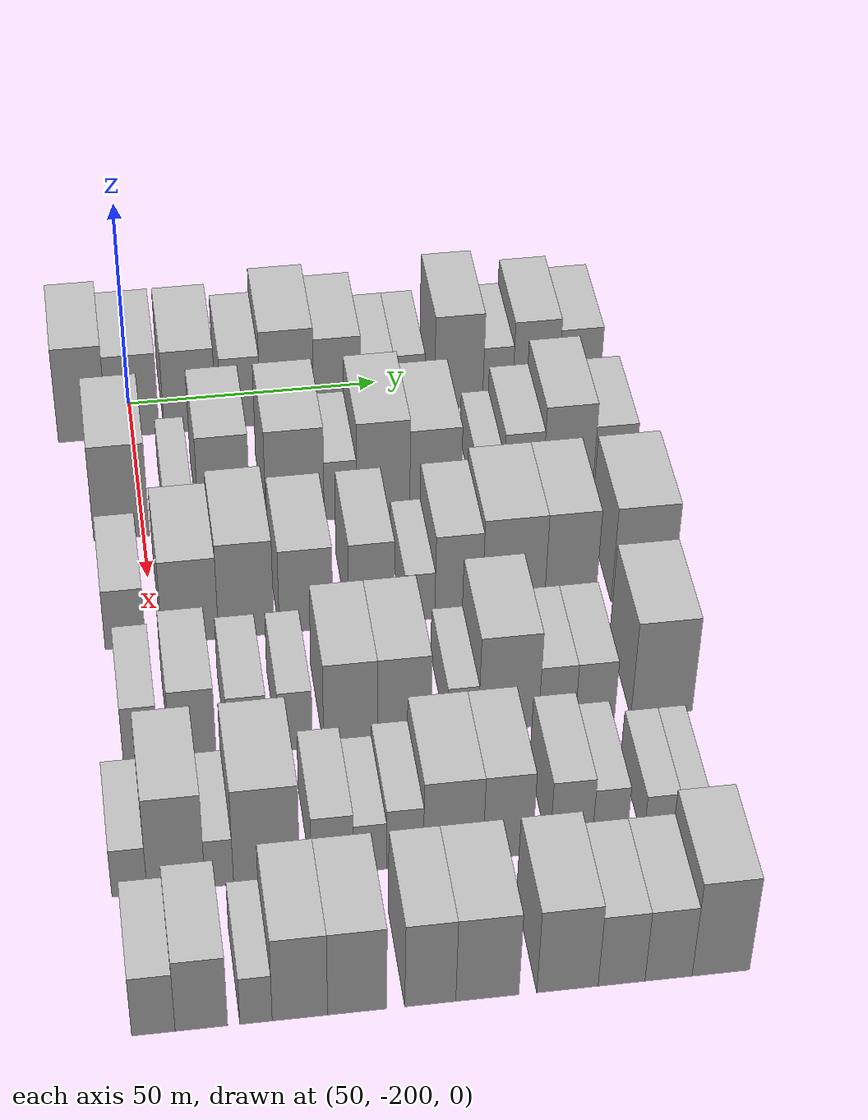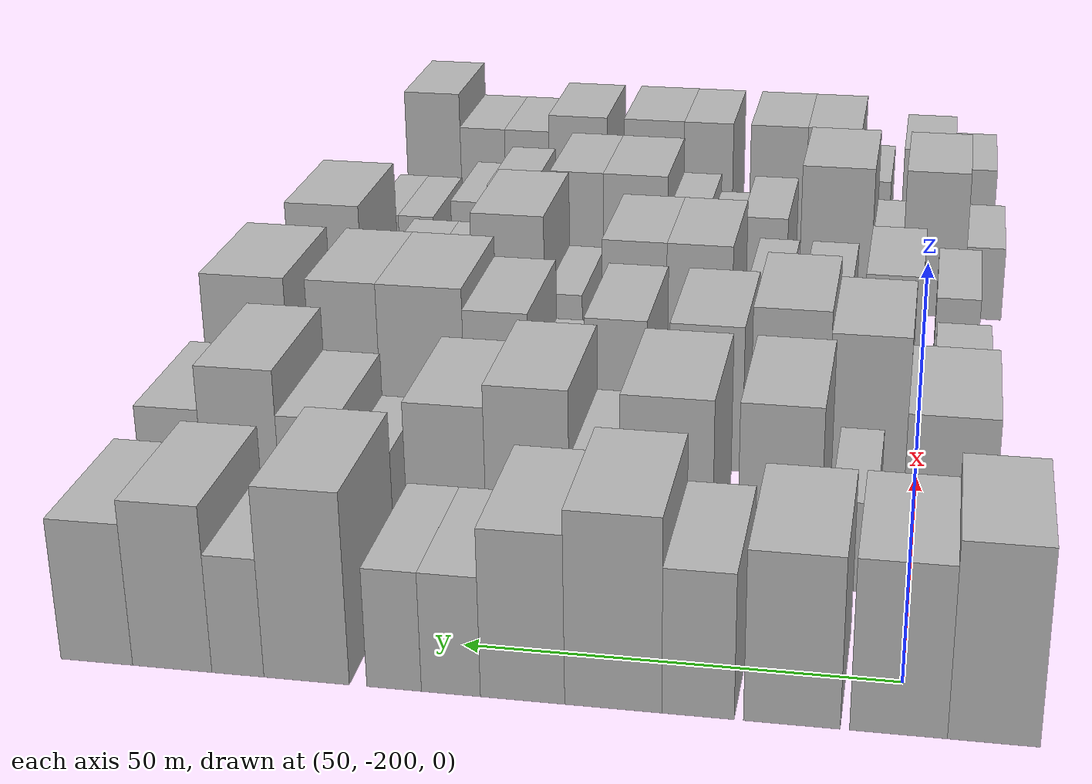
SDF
<sdf version="1.6">
 <world name="default">
  <model name="building_32">
   <static>1</static>
   <pose>50.0000 -209.8874 0 0.000000 0.000000 0.000000</pose>
   <link name="link">
    <pose>0 0 12.00 0 0 0</pose>
    <collision name="collision"><geometry><box><size>20.0000 9.7222 24.0000</size></box></geometry></collision>
    <visual name="visual">
     <cast_shadows>0</cast_shadows>
     <geometry><box><size>20.0000 9.7222 24.0000</size></box></geometry>
     <material>
      <script>
       <uri>model://HANNAS_wall/materials/scripts</uri>
       <uri>model://HANNAS_wall/materials/textures</uri>
       <name>vrc/HANNAS_wall</name>
      </script>
     </material>
    </visual>
   </link>
  </model>
  <model name="building_33">
   <static>1</static>
   <pose>50.0000 -199.8392 0 0.000000 0.000000 0.000000</pose>
   <link name="link">
    <pose>0 0 10.50 0 0 0</pose>
    <collision name="collision"><geometry><box><size>20.0000 10.3742 21.0000</size></box></geometry></collision>
    <visual name="visual">
     <cast_shadows>0</cast_shadows>
     <geometry><box><size>20.0000 10.3742 21.0000</size></box></geometry>
     <material>
      <script>
       <uri>model://HANNAS_wall/materials/scripts</uri>
       <uri>model://HANNAS_wall/materials/textures</uri>
       <name>vrc/HANNAS_wall</name>
      </script>
     </material>
    </visual>
   </link>
  </model>
  <model name="building_34">
   <static>1</static>
   <pose>50.0000 -188.4460 0 0.000000 0.000000 0.000000</pose>
   <link name="link">
    <pose>0 0 10.50 0 0 0</pose>
    <collision name="collision"><geometry><box><size>20.0000 10.4123 21.0000</size></box></geometry></collision>
    <visual name="visual">
     <cast_shadows>0</cast_shadows>
     <geometry><box><size>20.0000 10.4123 21.0000</size></box></geometry>
     <material>
      <script>
       <uri>model://HANNAS_wall/materials/scripts</uri>
       <uri>model://HANNAS_wall/materials/textures</uri>
       <name>vrc/HANNAS_wall</name>
      </script>
     </material>
    </visual>
   </link>
  </model>
  <model name="building_35">
   <static>1</static>
   <pose>50.0000 -178.2907 0 0.000000 0.000000 0.000000</pose>
   <link name="link">
    <pose>0 0 9.00 0 0 0</pose>
    <collision name="collision"><geometry><box><size>20.0000 7.8982 18.0000</size></box></geometry></collision>
    <visual name="visual">
     <cast_shadows>0</cast_shadows>
     <geometry><box><size>20.0000 7.8982 18.0000</size></box></geometry>
     <material>
      <script>
       <uri>model://HANNAS_wall/materials/scripts</uri>
       <uri>model://HANNAS_wall/materials/textures</uri>
       <name>vrc/HANNAS_wall</name>
      </script>
     </material>
    </visual>
   </link>
  </model>
  <model name="building_36">
   <static>1</static>
   <pose>50.0000 -168.9871 0 0.000000 0.000000 0.000000</pose>
   <link name="link">
    <pose>0 0 12.00 0 0 0</pose>
    <collision name="collision"><geometry><box><size>20.0000 10.7090 24.0000</size></box></geometry></collision>
    <visual name="visual">
     <cast_shadows>0</cast_shadows>
     <geometry><box><size>20.0000 10.7090 24.0000</size></box></geometry>
     <material>
      <script>
       <uri>model://HANNAS_wall/materials/scripts</uri>
       <uri>model://HANNAS_wall/materials/textures</uri>
       <name>vrc/HANNAS_wall</name>
      </script>
     </material>
    </visual>
   </link>
  </model>
  <model name="building_37">
   <static>1</static>
   <pose>50.0000 -158.9205 0 0.000000 0.000000 0.000000</pose>
   <link name="link">
    <pose>0 0 10.50 0 0 0</pose>
    <collision name="collision"><geometry><box><size>20.0000 9.4243 21.0000</size></box></geometry></collision>
    <visual name="visual">
     <cast_shadows>0</cast_shadows>
     <geometry><box><size>20.0000 9.4243 21.0000</size></box></geometry>
     <material>
      <script>
       <uri>model://HANNAS_wall/materials/scripts</uri>
       <uri>model://HANNAS_wall/materials/textures</uri>
       <name>vrc/HANNAS_wall</name>
      </script>
     </material>
    </visual>
   </link>
  </model>
  <model name="building_38">
   <static>1</static>
   <pose>50.0000 -150.8757 0 0.000000 0.000000 0.000000</pose>
   <link name="link">
    <pose>0 0 7.50 0 0 0</pose>
    <collision name="collision"><geometry><box><size>20.0000 6.6653 15.0000</size></box></geometry></collision>
    <visual name="visual">
     <cast_shadows>0</cast_shadows>
     <geometry><box><size>20.0000 6.6653 15.0000</size></box></geometry>
     <material>
      <script>
       <uri>model://HANNAS_wall/materials/scripts</uri>
       <uri>model://HANNAS_wall/materials/textures</uri>
       <name>vrc/HANNAS_wall</name>
      </script>
     </material>
    </visual>
   </link>
  </model>
  <model name="building_39">
   <static>1</static>
   <pose>50.0000 -144.4298 0 0.000000 0.000000 0.000000</pose>
   <link name="link">
    <pose>0 0 7.50 0 0 0</pose>
    <collision name="collision"><geometry><box><size>20.0000 6.2264 15.0000</size></box></geometry></collision>
    <visual name="visual">
     <cast_shadows>0</cast_shadows>
     <geometry><box><size>20.0000 6.2264 15.0000</size></box></geometry>
     <material>
      <script>
       <uri>model://HANNAS_wall/materials/scripts</uri>
       <uri>model://HANNAS_wall/materials/textures</uri>
       <name>vrc/HANNAS_wall</name>
      </script>
     </material>
    </visual>
   </link>
  </model>
  <model name="building_40">
   <static>1</static>
   <pose>50.0000 -134.3882 0 0.000000 0.000000 0.000000</pose>
   <link name="link">
    <pose>0 0 12.00 0 0 0</pose>
    <collision name="collision"><geometry><box><size>20.0000 9.8568 24.0000</size></box></geometry></collision>
    <visual name="visual">
     <cast_shadows>0</cast_shadows>
     <geometry><box><size>20.0000 9.8568 24.0000</size></box></geometry>
     <material>
      <script>
       <uri>model://HANNAS_wall/materials/scripts</uri>
       <uri>model://HANNAS_wall/materials/textures</uri>
       <name>vrc/HANNAS_wall</name>
      </script>
     </material>
    </visual>
   </link>
  </model>
  <model name="building_41">
   <static>1</static>
   <pose>50.0000 -126.4257 0 0.000000 0.000000 0.000000</pose>
   <link name="link">
    <pose>0 0 7.50 0 0 0</pose>
    <collision name="collision"><geometry><box><size>20.0000 6.0681 15.0000</size></box></geometry></collision>
    <visual name="visual">
     <cast_shadows>0</cast_shadows>
     <geometry><box><size>20.0000 6.0681 15.0000</size></box></geometry>
     <material>
      <script>
       <uri>model://HANNAS_wall/materials/scripts</uri>
       <uri>model://HANNAS_wall/materials/textures</uri>
       <name>vrc/HANNAS_wall</name>
      </script>
     </material>
    </visual>
   </link>
  </model>
  <model name="building_42">
   <static>1</static>
   <pose>50.0000 -118.7249 0 0.000000 0.000000 0.000000</pose>
   <link name="link">
    <pose>0 0 10.50 0 0 0</pose>
    <collision name="collision"><geometry><box><size>20.0000 9.3334 21.0000</size></box></geometry></collision>
    <visual name="visual">
     <cast_shadows>0</cast_shadows>
     <geometry><box><size>20.0000 9.3334 21.0000</size></box></geometry>
     <material>
      <script>
       <uri>model://HANNAS_wall/materials/scripts</uri>
       <uri>model://HANNAS_wall/materials/textures</uri>
       <name>vrc/HANNAS_wall</name>
      </script>
     </material>
    </visual>
   </link>
  </model>
  <model name="building_43">
   <static>1</static>
   <pose>50.0000 -109.7902 0 0.000000 0.000000 0.000000</pose>
   <link name="link">
    <pose>0 0 9.00 0 0 0</pose>
    <collision name="collision"><geometry><box><size>20.0000 8.5362 18.0000</size></box></geometry></collision>
    <visual name="visual">
     <cast_shadows>0</cast_shadows>
     <geometry><box><size>20.0000 8.5362 18.0000</size></box></geometry>
     <material>
      <script>
       <uri>model://HANNAS_wall/materials/scripts</uri>
       <uri>model://HANNAS_wall/materials/textures</uri>
       <name>vrc/HANNAS_wall</name>
      </script>
     </material>
    </visual>
   </link>
  </model>
  <model name="building_143">
   <static>1</static>
   <pose>79.0000 -204.1095 0 0.000000 0.000000 0.000000</pose>
   <link name="link">
    <pose>0 0 12.00 0 0 0</pose>
    <collision name="collision"><geometry><box><size>20.0000 10.7269 24.0000</size></box></geometry></collision>
    <visual name="visual">
     <cast_shadows>0</cast_shadows>
     <geometry><box><size>20.0000 10.7269 24.0000</size></box></geometry>
     <material>
      <script>
       <uri>model://HANNAS_wall/materials/scripts</uri>
       <uri>model://HANNAS_wall/materials/textures</uri>
       <name>vrc/HANNAS_wall</name>
      </script>
     </material>
    </visual>
   </link>
  </model>
  <model name="building_144">
   <static>1</static>
   <pose>79.0000 -192.9964 0 0.000000 0.000000 0.000000</pose>
   <link name="link">
    <pose>0 0 6.00 0 0 0</pose>
    <collision name="collision"><geometry><box><size>20.0000 5.4992 12.0000</size></box></geometry></collision>
    <visual name="visual">
     <cast_shadows>0</cast_shadows>
     <geometry><box><size>20.0000 5.4992 12.0000</size></box></geometry>
     <material>
      <script>
       <uri>model://HANNAS_wall/materials/scripts</uri>
       <uri>model://HANNAS_wall/materials/textures</uri>
       <name>vrc/HANNAS_wall</name>
      </script>
     </material>
    </visual>
   </link>
  </model>
  <model name="building_145">
   <static>1</static>
   <pose>79.0000 -184.2777 0 0.000000 0.000000 0.000000</pose>
   <link name="link">
    <pose>0 0 12.00 0 0 0</pose>
    <collision name="collision"><geometry><box><size>20.0000 9.9382 24.0000</size></box></geometry></collision>
    <visual name="visual">
     <cast_shadows>0</cast_shadows>
     <geometry><box><size>20.0000 9.9382 24.0000</size></box></geometry>
     <material>
      <script>
       <uri>model://HANNAS_wall/materials/scripts</uri>
       <uri>model://HANNAS_wall/materials/textures</uri>
       <name>vrc/HANNAS_wall</name>
      </script>
     </material>
    </visual>
   </link>
  </model>
  <model name="building_146">
   <static>1</static>
   <pose>79.0000 -170.6730 0 0.000000 0.000000 0.000000</pose>
   <link name="link">
    <pose>0 0 12.00 0 0 0</pose>
    <collision name="collision"><geometry><box><size>20.0000 11.2712 24.0000</size></box></geometry></collision>
    <visual name="visual">
     <cast_shadows>0</cast_shadows>
     <geometry><box><size>20.0000 11.2712 24.0000</size></box></geometry>
     <material>
      <script>
       <uri>model://HANNAS_wall/materials/scripts</uri>
       <uri>model://HANNAS_wall/materials/textures</uri>
       <name>vrc/HANNAS_wall</name>
      </script>
     </material>
    </visual>
   </link>
  </model>
  <model name="building_147">
   <static>1</static>
   <pose>79.0000 -161.9149 0 0.000000 0.000000 0.000000</pose>
   <link name="link">
    <pose>0 0 7.50 0 0 0</pose>
    <collision name="collision"><geometry><box><size>20.0000 6.2450 15.0000</size></box></geometry></collision>
    <visual name="visual">
     <cast_shadows>0</cast_shadows>
     <geometry><box><size>20.0000 6.2450 15.0000</size></box></geometry>
     <material>
      <script>
       <uri>model://HANNAS_wall/materials/scripts</uri>
       <uri>model://HANNAS_wall/materials/textures</uri>
       <name>vrc/HANNAS_wall</name>
      </script>
     </material>
    </visual>
   </link>
  </model>
  <model name="building_148">
   <static>1</static>
   <pose>79.0000 -153.6004 0 0.000000 0.000000 0.000000</pose>
   <link name="link">
    <pose>0 0 12.00 0 0 0</pose>
    <collision name="collision"><geometry><box><size>20.0000 10.3841 24.0000</size></box></geometry></collision>
    <visual name="visual">
     <cast_shadows>0</cast_shadows>
     <geometry><box><size>20.0000 10.3841 24.0000</size></box></geometry>
     <material>
      <script>
       <uri>model://HANNAS_wall/materials/scripts</uri>
       <uri>model://HANNAS_wall/materials/textures</uri>
       <name>vrc/HANNAS_wall</name>
      </script>
     </material>
    </visual>
   </link>
  </model>
  <model name="building_149">
   <static>1</static>
   <pose>79.0000 -143.4248 0 0.000000 0.000000 0.000000</pose>
   <link name="link">
    <pose>0 0 10.50 0 0 0</pose>
    <collision name="collision"><geometry><box><size>20.0000 9.9672 21.0000</size></box></geometry></collision>
    <visual name="visual">
     <cast_shadows>0</cast_shadows>
     <geometry><box><size>20.0000 9.9672 21.0000</size></box></geometry>
     <material>
      <script>
       <uri>model://HANNAS_wall/materials/scripts</uri>
       <uri>model://HANNAS_wall/materials/textures</uri>
       <name>vrc/HANNAS_wall</name>
      </script>
     </material>
    </visual>
   </link>
  </model>
  <model name="building_150">
   <static>1</static>
   <pose>79.0000 -132.7456 0 0.000000 0.000000 0.000000</pose>
   <link name="link">
    <pose>0 0 6.00 0 0 0</pose>
    <collision name="collision"><geometry><box><size>20.0000 5.3911 12.0000</size></box></geometry></collision>
    <visual name="visual">
     <cast_shadows>0</cast_shadows>
     <geometry><box><size>20.0000 5.3911 12.0000</size></box></geometry>
     <material>
      <script>
       <uri>model://HANNAS_wall/materials/scripts</uri>
       <uri>model://HANNAS_wall/materials/textures</uri>
       <name>vrc/HANNAS_wall</name>
      </script>
     </material>
    </visual>
   </link>
  </model>
  <model name="building_151">
   <static>1</static>
   <pose>79.0000 -126.2244 0 0.000000 0.000000 0.000000</pose>
   <link name="link">
    <pose>0 0 9.00 0 0 0</pose>
    <collision name="collision"><geometry><box><size>20.0000 7.6513 18.0000</size></box></geometry></collision>
    <visual name="visual">
     <cast_shadows>0</cast_shadows>
     <geometry><box><size>20.0000 7.6513 18.0000</size></box></geometry>
     <material>
      <script>
       <uri>model://HANNAS_wall/materials/scripts</uri>
       <uri>model://HANNAS_wall/materials/textures</uri>
       <name>vrc/HANNAS_wall</name>
      </script>
     </material>
    </visual>
   </link>
  </model>
  <model name="building_152">
   <static>1</static>
   <pose>79.0000 -117.4404 0 0.000000 0.000000 0.000000</pose>
   <link name="link">
    <pose>0 0 12.00 0 0 0</pose>
    <collision name="collision"><geometry><box><size>20.0000 9.9169 24.0000</size></box></geometry></collision>
    <visual name="visual">
     <cast_shadows>0</cast_shadows>
     <geometry><box><size>20.0000 9.9169 24.0000</size></box></geometry>
     <material>
      <script>
       <uri>model://HANNAS_wall/materials/scripts</uri>
       <uri>model://HANNAS_wall/materials/textures</uri>
       <name>vrc/HANNAS_wall</name>
      </script>
     </material>
    </visual>
   </link>
  </model>
  <model name="building_153">
   <static>1</static>
   <pose>79.0000 -108.3870 0 0.000000 0.000000 0.000000</pose>
   <link name="link">
    <pose>0 0 9.00 0 0 0</pose>
    <collision name="collision"><geometry><box><size>20.0000 8.1900 18.0000</size></box></geometry></collision>
    <visual name="visual">
     <cast_shadows>0</cast_shadows>
     <geometry><box><size>20.0000 8.1900 18.0000</size></box></geometry>
     <material>
      <script>
       <uri>model://HANNAS_wall/materials/scripts</uri>
       <uri>model://HANNAS_wall/materials/textures</uri>
       <name>vrc/HANNAS_wall</name>
      </script>
     </material>
    </visual>
   </link>
  </model>
  <model name="building_254">
   <static>1</static>
   <pose>108.0000 -205.3923 0 0.000000 0.000000 0.000000</pose>
   <link name="link">
    <pose>0 0 7.50 0 0 0</pose>
    <collision name="collision"><geometry><box><size>20.0000 7.4865 15.0000</size></box></geometry></collision>
    <visual name="visual">
     <cast_shadows>0</cast_shadows>
     <geometry><box><size>20.0000 7.4865 15.0000</size></box></geometry>
     <material>
      <script>
       <uri>model://HANNAS_wall/materials/scripts</uri>
       <uri>model://HANNAS_wall/materials/textures</uri>
       <name>vrc/HANNAS_wall</name>
      </script>
     </material>
    </visual>
   </link>
  </model>
  <model name="building_255">
   <static>1</static>
   <pose>108.0000 -193.4104 0 0.000000 0.000000 0.000000</pose>
   <link name="link">
    <pose>0 0 10.50 0 0 0</pose>
    <collision name="collision"><geometry><box><size>20.0000 10.4773 21.0000</size></box></geometry></collision>
    <visual name="visual">
     <cast_shadows>0</cast_shadows>
     <geometry><box><size>20.0000 10.4773 21.0000</size></box></geometry>
     <material>
      <script>
       <uri>model://HANNAS_wall/materials/scripts</uri>
       <uri>model://HANNAS_wall/materials/textures</uri>
       <name>vrc/HANNAS_wall</name>
      </script>
     </material>
    </visual>
   </link>
  </model>
  <model name="building_256">
   <static>1</static>
   <pose>108.0000 -183.0156 0 0.000000 0.000000 0.000000</pose>
   <link name="link">
    <pose>0 0 12.00 0 0 0</pose>
    <collision name="collision"><geometry><box><size>20.0000 10.3125 24.0000</size></box></geometry></collision>
    <visual name="visual">
     <cast_shadows>0</cast_shadows>
     <geometry><box><size>20.0000 10.3125 24.0000</size></box></geometry>
     <material>
      <script>
       <uri>model://HANNAS_wall/materials/scripts</uri>
       <uri>model://HANNAS_wall/materials/textures</uri>
       <name>vrc/HANNAS_wall</name>
      </script>
     </material>
    </visual>
   </link>
  </model>
  <model name="building_257">
   <static>1</static>
   <pose>108.0000 -171.8912 0 0.000000 0.000000 0.000000</pose>
   <link name="link">
    <pose>0 0 10.50 0 0 0</pose>
    <collision name="collision"><geometry><box><size>20.0000 9.9362 21.0000</size></box></geometry></collision>
    <visual name="visual">
     <cast_shadows>0</cast_shadows>
     <geometry><box><size>20.0000 9.9362 21.0000</size></box></geometry>
     <material>
      <script>
       <uri>model://HANNAS_wall/materials/scripts</uri>
       <uri>model://HANNAS_wall/materials/textures</uri>
       <name>vrc/HANNAS_wall</name>
      </script>
     </material>
    </visual>
   </link>
  </model>
  <model name="building_258">
   <static>1</static>
   <pose>108.0000 -159.6842 0 0.000000 0.000000 0.000000</pose>
   <link name="link">
    <pose>0 0 10.50 0 0 0</pose>
    <collision name="collision"><geometry><box><size>20.0000 8.4778 21.0000</size></box></geometry></collision>
    <visual name="visual">
     <cast_shadows>0</cast_shadows>
     <geometry><box><size>20.0000 8.4778 21.0000</size></box></geometry>
     <material>
      <script>
       <uri>model://HANNAS_wall/materials/scripts</uri>
       <uri>model://HANNAS_wall/materials/textures</uri>
       <name>vrc/HANNAS_wall</name>
      </script>
     </material>
    </visual>
   </link>
  </model>
  <model name="building_259">
   <static>1</static>
   <pose>108.0000 -150.6266 0 0.000000 0.000000 0.000000</pose>
   <link name="link">
    <pose>0 0 6.00 0 0 0</pose>
    <collision name="collision"><geometry><box><size>20.0000 5.6375 12.0000</size></box></geometry></collision>
    <visual name="visual">
     <cast_shadows>0</cast_shadows>
     <geometry><box><size>20.0000 5.6375 12.0000</size></box></geometry>
     <material>
      <script>
       <uri>model://HANNAS_wall/materials/scripts</uri>
       <uri>model://HANNAS_wall/materials/textures</uri>
       <name>vrc/HANNAS_wall</name>
      </script>
     </material>
    </visual>
   </link>
  </model>
  <model name="building_260">
   <static>1</static>
   <pose>108.0000 -143.3648 0 0.000000 0.000000 0.000000</pose>
   <link name="link">
    <pose>0 0 10.50 0 0 0</pose>
    <collision name="collision"><geometry><box><size>20.0000 8.8861 21.0000</size></box></geometry></collision>
    <visual name="visual">
     <cast_shadows>0</cast_shadows>
     <geometry><box><size>20.0000 8.8861 21.0000</size></box></geometry>
     <material>
      <script>
       <uri>model://HANNAS_wall/materials/scripts</uri>
       <uri>model://HANNAS_wall/materials/textures</uri>
       <name>vrc/HANNAS_wall</name>
      </script>
     </material>
    </visual>
   </link>
  </model>
  <model name="building_261">
   <static>1</static>
   <pose>108.0000 -133.0179 0 0.000000 0.000000 0.000000</pose>
   <link name="link">
    <pose>0 0 12.00 0 0 0</pose>
    <collision name="collision"><geometry><box><size>20.0000 11.8077 24.0000</size></box></geometry></collision>
    <visual name="visual">
     <cast_shadows>0</cast_shadows>
     <geometry><box><size>20.0000 11.8077 24.0000</size></box></geometry>
     <material>
      <script>
       <uri>model://HANNAS_wall/materials/scripts</uri>
       <uri>model://HANNAS_wall/materials/textures</uri>
       <name>vrc/HANNAS_wall</name>
      </script>
     </material>
    </visual>
   </link>
  </model>
  <model name="building_262">
   <static>1</static>
   <pose>108.0000 -122.2464 0 0.000000 0.000000 0.000000</pose>
   <link name="link">
    <pose>0 0 12.00 0 0 0</pose>
    <collision name="collision"><geometry><box><size>20.0000 9.7353 24.0000</size></box></geometry></collision>
    <visual name="visual">
     <cast_shadows>0</cast_shadows>
     <geometry><box><size>20.0000 9.7353 24.0000</size></box></geometry>
     <material>
      <script>
       <uri>model://HANNAS_wall/materials/scripts</uri>
       <uri>model://HANNAS_wall/materials/textures</uri>
       <name>vrc/HANNAS_wall</name>
      </script>
     </material>
    </visual>
   </link>
  </model>
  <model name="building_263">
   <static>1</static>
   <pose>108.0000 -108.4960 0 0.000000 0.000000 0.000000</pose>
   <link name="link">
    <pose>0 0 12.00 0 0 0</pose>
    <collision name="collision"><geometry><box><size>20.0000 11.7654 24.0000</size></box></geometry></collision>
    <visual name="visual">
     <cast_shadows>0</cast_shadows>
     <geometry><box><size>20.0000 11.7654 24.0000</size></box></geometry>
     <material>
      <script>
       <uri>model://HANNAS_wall/materials/scripts</uri>
       <uri>model://HANNAS_wall/materials/textures</uri>
       <name>vrc/HANNAS_wall</name>
      </script>
     </material>
    </visual>
   </link>
  </model>
  <model name="building_363">
   <static>1</static>
   <pose>137.0000 -204.5634 0 0.000000 0.000000 0.000000</pose>
   <link name="link">
    <pose>0 0 7.50 0 0 0</pose>
    <collision name="collision"><geometry><box><size>20.0000 6.2729 15.0000</size></box></geometry></collision>
    <visual name="visual">
     <cast_shadows>0</cast_shadows>
     <geometry><box><size>20.0000 6.2729 15.0000</size></box></geometry>
     <material>
      <script>
       <uri>model://HANNAS_wall/materials/scripts</uri>
       <uri>model://HANNAS_wall/materials/textures</uri>
       <name>vrc/HANNAS_wall</name>
      </script>
     </material>
    </visual>
   </link>
  </model>
  <model name="building_364">
   <static>1</static>
   <pose>137.0000 -195.3425 0 0.000000 0.000000 0.000000</pose>
   <link name="link">
    <pose>0 0 9.00 0 0 0</pose>
    <collision name="collision"><geometry><box><size>20.0000 8.1687 18.0000</size></box></geometry></collision>
    <visual name="visual">
     <cast_shadows>0</cast_shadows>
     <geometry><box><size>20.0000 8.1687 18.0000</size></box></geometry>
     <material>
      <script>
       <uri>model://HANNAS_wall/materials/scripts</uri>
       <uri>model://HANNAS_wall/materials/textures</uri>
       <name>vrc/HANNAS_wall</name>
      </script>
     </material>
    </visual>
   </link>
  </model>
  <model name="building_365">
   <static>1</static>
   <pose>137.0000 -185.7282 0 0.000000 0.000000 0.000000</pose>
   <link name="link">
    <pose>0 0 7.50 0 0 0</pose>
    <collision name="collision"><geometry><box><size>20.0000 7.0600 15.0000</size></box></geometry></collision>
    <visual name="visual">
     <cast_shadows>0</cast_shadows>
     <geometry><box><size>20.0000 7.0600 15.0000</size></box></geometry>
     <material>
      <script>
       <uri>model://HANNAS_wall/materials/scripts</uri>
       <uri>model://HANNAS_wall/materials/textures</uri>
       <name>vrc/HANNAS_wall</name>
      </script>
     </material>
    </visual>
   </link>
  </model>
  <model name="building_366">
   <static>1</static>
   <pose>137.0000 -177.1450 0 0.000000 0.000000 0.000000</pose>
   <link name="link">
    <pose>0 0 7.50 0 0 0</pose>
    <collision name="collision"><geometry><box><size>20.0000 6.1064 15.0000</size></box></geometry></collision>
    <visual name="visual">
     <cast_shadows>0</cast_shadows>
     <geometry><box><size>20.0000 6.1064 15.0000</size></box></geometry>
     <material>
      <script>
       <uri>model://HANNAS_wall/materials/scripts</uri>
       <uri>model://HANNAS_wall/materials/textures</uri>
       <name>vrc/HANNAS_wall</name>
      </script>
     </material>
    </visual>
   </link>
  </model>
  <model name="building_367">
   <static>1</static>
   <pose>137.0000 -167.2583 0 0.000000 0.000000 0.000000</pose>
   <link name="link">
    <pose>0 0 10.50 0 0 0</pose>
    <collision name="collision"><geometry><box><size>20.0000 9.6670 21.0000</size></box></geometry></collision>
    <visual name="visual">
     <cast_shadows>0</cast_shadows>
     <geometry><box><size>20.0000 9.6670 21.0000</size></box></geometry>
     <material>
      <script>
       <uri>model://HANNAS_wall/materials/scripts</uri>
       <uri>model://HANNAS_wall/materials/textures</uri>
       <name>vrc/HANNAS_wall</name>
      </script>
     </material>
    </visual>
   </link>
  </model>
  <model name="building_368">
   <static>1</static>
   <pose>137.0000 -157.6413 0 0.000000 0.000000 0.000000</pose>
   <link name="link">
    <pose>0 0 10.50 0 0 0</pose>
    <collision name="collision"><geometry><box><size>20.0000 9.5670 21.0000</size></box></geometry></collision>
    <visual name="visual">
     <cast_shadows>0</cast_shadows>
     <geometry><box><size>20.0000 9.5670 21.0000</size></box></geometry>
     <material>
      <script>
       <uri>model://HANNAS_wall/materials/scripts</uri>
       <uri>model://HANNAS_wall/materials/textures</uri>
       <name>vrc/HANNAS_wall</name>
      </script>
     </material>
    </visual>
   </link>
  </model>
  <model name="building_369">
   <static>1</static>
   <pose>137.0000 -147.0509 0 0.000000 0.000000 0.000000</pose>
   <link name="link">
    <pose>0 0 6.00 0 0 0</pose>
    <collision name="collision"><geometry><box><size>20.0000 5.6139 12.0000</size></box></geometry></collision>
    <visual name="visual">
     <cast_shadows>0</cast_shadows>
     <geometry><box><size>20.0000 5.6139 12.0000</size></box></geometry>
     <material>
      <script>
       <uri>model://HANNAS_wall/materials/scripts</uri>
       <uri>model://HANNAS_wall/materials/textures</uri>
       <name>vrc/HANNAS_wall</name>
      </script>
     </material>
    </visual>
   </link>
  </model>
  <model name="building_370">
   <static>1</static>
   <pose>137.0000 -138.7744 0 0.000000 0.000000 0.000000</pose>
   <link name="link">
    <pose>0 0 12.00 0 0 0</pose>
    <collision name="collision"><geometry><box><size>20.0000 10.9391 24.0000</size></box></geometry></collision>
    <visual name="visual">
     <cast_shadows>0</cast_shadows>
     <geometry><box><size>20.0000 10.9391 24.0000</size></box></geometry>
     <material>
      <script>
       <uri>model://HANNAS_wall/materials/scripts</uri>
       <uri>model://HANNAS_wall/materials/textures</uri>
       <name>vrc/HANNAS_wall</name>
      </script>
     </material>
    </visual>
   </link>
  </model>
  <model name="building_371">
   <static>1</static>
   <pose>137.0000 -129.9476 0 0.000000 0.000000 0.000000</pose>
   <link name="link">
    <pose>0 0 7.50 0 0 0</pose>
    <collision name="collision"><geometry><box><size>20.0000 6.7143 15.0000</size></box></geometry></collision>
    <visual name="visual">
     <cast_shadows>0</cast_shadows>
     <geometry><box><size>20.0000 6.7143 15.0000</size></box></geometry>
     <material>
      <script>
       <uri>model://HANNAS_wall/materials/scripts</uri>
       <uri>model://HANNAS_wall/materials/textures</uri>
       <name>vrc/HANNAS_wall</name>
      </script>
     </material>
    </visual>
   </link>
  </model>
  <model name="building_372">
   <static>1</static>
   <pose>137.0000 -123.0063 0 0.000000 0.000000 0.000000</pose>
   <link name="link">
    <pose>0 0 7.50 0 0 0</pose>
    <collision name="collision"><geometry><box><size>20.0000 7.1683 15.0000</size></box></geometry></collision>
    <visual name="visual">
     <cast_shadows>0</cast_shadows>
     <geometry><box><size>20.0000 7.1683 15.0000</size></box></geometry>
     <material>
      <script>
       <uri>model://HANNAS_wall/materials/scripts</uri>
       <uri>model://HANNAS_wall/materials/textures</uri>
       <name>vrc/HANNAS_wall</name>
      </script>
     </material>
    </visual>
   </link>
  </model>
  <model name="building_373">
   <static>1</static>
   <pose>137.0000 -110.8007 0 0.000000 0.000000 0.000000</pose>
   <link name="link">
    <pose>0 0 12.00 0 0 0</pose>
    <collision name="collision"><geometry><box><size>20.0000 11.2429 24.0000</size></box></geometry></collision>
    <visual name="visual">
     <cast_shadows>0</cast_shadows>
     <geometry><box><size>20.0000 11.2429 24.0000</size></box></geometry>
     <material>
      <script>
       <uri>model://HANNAS_wall/materials/scripts</uri>
       <uri>model://HANNAS_wall/materials/textures</uri>
       <name>vrc/HANNAS_wall</name>
      </script>
     </material>
    </visual>
   </link>
  </model>
  <model name="building_481">
   <static>1</static>
   <pose>166.0000 -208.6887 0 0.000000 0.000000 0.000000</pose>
   <link name="link">
    <pose>0 0 6.00 0 0 0</pose>
    <collision name="collision"><geometry><box><size>20.0000 5.9915 12.0000</size></box></geometry></collision>
    <visual name="visual">
     <cast_shadows>0</cast_shadows>
     <geometry><box><size>20.0000 5.9915 12.0000</size></box></geometry>
     <material>
      <script>
       <uri>model://HANNAS_wall/materials/scripts</uri>
       <uri>model://HANNAS_wall/materials/textures</uri>
       <name>vrc/HANNAS_wall</name>
      </script>
     </material>
    </visual>
   </link>
  </model>
  <model name="building_482">
   <static>1</static>
   <pose>166.0000 -200.7702 0 0.000000 0.000000 0.000000</pose>
   <link name="link">
    <pose>0 0 12.00 0 0 0</pose>
    <collision name="collision"><geometry><box><size>20.0000 9.8454 24.0000</size></box></geometry></collision>
    <visual name="visual">
     <cast_shadows>0</cast_shadows>
     <geometry><box><size>20.0000 9.8454 24.0000</size></box></geometry>
     <material>
      <script>
       <uri>model://HANNAS_wall/materials/scripts</uri>
       <uri>model://HANNAS_wall/materials/textures</uri>
       <name>vrc/HANNAS_wall</name>
      </script>
     </material>
    </visual>
   </link>
  </model>
  <model name="building_483">
   <static>1</static>
   <pose>166.0000 -193.4150 0 0.000000 0.000000 0.000000</pose>
   <link name="link">
    <pose>0 0 6.00 0 0 0</pose>
    <collision name="collision"><geometry><box><size>20.0000 4.8649 12.0000</size></box></geometry></collision>
    <visual name="visual">
     <cast_shadows>0</cast_shadows>
     <geometry><box><size>20.0000 4.8649 12.0000</size></box></geometry>
     <material>
      <script>
       <uri>model://HANNAS_wall/materials/scripts</uri>
       <uri>model://HANNAS_wall/materials/textures</uri>
       <name>vrc/HANNAS_wall</name>
      </script>
     </material>
    </visual>
   </link>
  </model>
  <model name="building_484">
   <static>1</static>
   <pose>166.0000 -185.3224 0 0.000000 0.000000 0.000000</pose>
   <link name="link">
    <pose>0 0 12.00 0 0 0</pose>
    <collision name="collision"><geometry><box><size>20.0000 11.3204 24.0000</size></box></geometry></collision>
    <visual name="visual">
     <cast_shadows>0</cast_shadows>
     <geometry><box><size>20.0000 11.3204 24.0000</size></box></geometry>
     <material>
      <script>
       <uri>model://HANNAS_wall/materials/scripts</uri>
       <uri>model://HANNAS_wall/materials/textures</uri>
       <name>vrc/HANNAS_wall</name>
      </script>
     </material>
    </visual>
   </link>
  </model>
  <model name="building_485">
   <static>1</static>
   <pose>166.0000 -174.0446 0 0.000000 0.000000 0.000000</pose>
   <link name="link">
    <pose>0 0 7.50 0 0 0</pose>
    <collision name="collision"><geometry><box><size>20.0000 7.2351 15.0000</size></box></geometry></collision>
    <visual name="visual">
     <cast_shadows>0</cast_shadows>
     <geometry><box><size>20.0000 7.2351 15.0000</size></box></geometry>
     <material>
      <script>
       <uri>model://HANNAS_wall/materials/scripts</uri>
       <uri>model://HANNAS_wall/materials/textures</uri>
       <name>vrc/HANNAS_wall</name>
      </script>
     </material>
    </visual>
   </link>
  </model>
  <model name="building_486">
   <static>1</static>
   <pose>166.0000 -167.5974 0 0.000000 0.000000 0.000000</pose>
   <link name="link">
    <pose>0 0 6.00 0 0 0</pose>
    <collision name="collision"><geometry><box><size>20.0000 5.6594 12.0000</size></box></geometry></collision>
    <visual name="visual">
     <cast_shadows>0</cast_shadows>
     <geometry><box><size>20.0000 5.6594 12.0000</size></box></geometry>
     <material>
      <script>
       <uri>model://HANNAS_wall/materials/scripts</uri>
       <uri>model://HANNAS_wall/materials/textures</uri>
       <name>vrc/HANNAS_wall</name>
      </script>
     </material>
    </visual>
   </link>
  </model>
  <model name="building_487">
   <static>1</static>
   <pose>166.0000 -161.6030 0 0.000000 0.000000 0.000000</pose>
   <link name="link">
    <pose>0 0 7.50 0 0 0</pose>
    <collision name="collision"><geometry><box><size>20.0000 6.3294 15.0000</size></box></geometry></collision>
    <visual name="visual">
     <cast_shadows>0</cast_shadows>
     <geometry><box><size>20.0000 6.3294 15.0000</size></box></geometry>
     <material>
      <script>
       <uri>model://HANNAS_wall/materials/scripts</uri>
       <uri>model://HANNAS_wall/materials/textures</uri>
       <name>vrc/HANNAS_wall</name>
      </script>
     </material>
    </visual>
   </link>
  </model>
  <model name="building_488">
   <static>1</static>
   <pose>166.0000 -153.2631 0 0.000000 0.000000 0.000000</pose>
   <link name="link">
    <pose>0 0 10.50 0 0 0</pose>
    <collision name="collision"><geometry><box><size>20.0000 10.3504 21.0000</size></box></geometry></collision>
    <visual name="visual">
     <cast_shadows>0</cast_shadows>
     <geometry><box><size>20.0000 10.3504 21.0000</size></box></geometry>
     <material>
      <script>
       <uri>model://HANNAS_wall/materials/scripts</uri>
       <uri>model://HANNAS_wall/materials/textures</uri>
       <name>vrc/HANNAS_wall</name>
      </script>
     </material>
    </visual>
   </link>
  </model>
  <model name="building_489">
   <static>1</static>
   <pose>166.0000 -143.7828 0 0.000000 0.000000 0.000000</pose>
   <link name="link">
    <pose>0 0 10.50 0 0 0</pose>
    <collision name="collision"><geometry><box><size>20.0000 8.6101 21.0000</size></box></geometry></collision>
    <visual name="visual">
     <cast_shadows>0</cast_shadows>
     <geometry><box><size>20.0000 8.6101 21.0000</size></box></geometry>
     <material>
      <script>
       <uri>model://HANNAS_wall/materials/scripts</uri>
       <uri>model://HANNAS_wall/materials/textures</uri>
       <name>vrc/HANNAS_wall</name>
      </script>
     </material>
    </visual>
   </link>
  </model>
  <model name="building_490">
   <static>1</static>
   <pose>166.0000 -132.7944 0 0.000000 0.000000 0.000000</pose>
   <link name="link">
    <pose>0 0 9.00 0 0 0</pose>
    <collision name="collision"><geometry><box><size>20.0000 7.3667 18.0000</size></box></geometry></collision>
    <visual name="visual">
     <cast_shadows>0</cast_shadows>
     <geometry><box><size>20.0000 7.3667 18.0000</size></box></geometry>
     <material>
      <script>
       <uri>model://HANNAS_wall/materials/scripts</uri>
       <uri>model://HANNAS_wall/materials/textures</uri>
       <name>vrc/HANNAS_wall</name>
      </script>
     </material>
    </visual>
   </link>
  </model>
  <model name="building_491">
   <static>1</static>
   <pose>166.0000 -126.0777 0 0.000000 0.000000 0.000000</pose>
   <link name="link">
    <pose>0 0 7.50 0 0 0</pose>
    <collision name="collision"><geometry><box><size>20.0000 6.0668 15.0000</size></box></geometry></collision>
    <visual name="visual">
     <cast_shadows>0</cast_shadows>
     <geometry><box><size>20.0000 6.0668 15.0000</size></box></geometry>
     <material>
      <script>
       <uri>model://HANNAS_wall/materials/scripts</uri>
       <uri>model://HANNAS_wall/materials/textures</uri>
       <name>vrc/HANNAS_wall</name>
      </script>
     </material>
    </visual>
   </link>
  </model>
  <model name="building_492">
   <static>1</static>
   <pose>166.0000 -117.1148 0 0.000000 0.000000 0.000000</pose>
   <link name="link">
    <pose>0 0 6.00 0 0 0</pose>
    <collision name="collision"><geometry><box><size>20.0000 5.8590 12.0000</size></box></geometry></collision>
    <visual name="visual">
     <cast_shadows>0</cast_shadows>
     <geometry><box><size>20.0000 5.8590 12.0000</size></box></geometry>
     <material>
      <script>
       <uri>model://HANNAS_wall/materials/scripts</uri>
       <uri>model://HANNAS_wall/materials/textures</uri>
       <name>vrc/HANNAS_wall</name>
      </script>
     </material>
    </visual>
   </link>
  </model>
  <model name="building_493">
   <static>1</static>
   <pose>166.0000 -111.7478 0 0.000000 0.000000 0.000000</pose>
   <link name="link">
    <pose>0 0 6.00 0 0 0</pose>
    <collision name="collision"><geometry><box><size>20.0000 4.8751 12.0000</size></box></geometry></collision>
    <visual name="visual">
     <cast_shadows>0</cast_shadows>
     <geometry><box><size>20.0000 4.8751 12.0000</size></box></geometry>
     <material>
      <script>
       <uri>model://HANNAS_wall/materials/scripts</uri>
       <uri>model://HANNAS_wall/materials/textures</uri>
       <name>vrc/HANNAS_wall</name>
      </script>
     </material>
    </visual>
   </link>
  </model>
  <model name="building_598">
   <static>1</static>
   <pose>195.0000 -206.8496 0 0.000000 0.000000 0.000000</pose>
   <link name="link">
    <pose>0 0 7.50 0 0 0</pose>
    <collision name="collision"><geometry><box><size>20.0000 7.0714 15.0000</size></box></geometry></collision>
    <visual name="visual">
     <cast_shadows>0</cast_shadows>
     <geometry><box><size>20.0000 7.0714 15.0000</size></box></geometry>
     <material>
      <script>
       <uri>model://HANNAS_wall/materials/scripts</uri>
       <uri>model://HANNAS_wall/materials/textures</uri>
       <name>vrc/HANNAS_wall</name>
      </script>
     </material>
    </visual>
   </link>
  </model>
  <model name="building_599">
   <static>1</static>
   <pose>195.0000 -199.0338 0 0.000000 0.000000 0.000000</pose>
   <link name="link">
    <pose>0 0 9.00 0 0 0</pose>
    <collision name="collision"><geometry><box><size>20.0000 8.5601 18.0000</size></box></geometry></collision>
    <visual name="visual">
     <cast_shadows>0</cast_shadows>
     <geometry><box><size>20.0000 8.5601 18.0000</size></box></geometry>
     <material>
      <script>
       <uri>model://HANNAS_wall/materials/scripts</uri>
       <uri>model://HANNAS_wall/materials/textures</uri>
       <name>vrc/HANNAS_wall</name>
      </script>
     </material>
    </visual>
   </link>
  </model>
  <model name="building_600">
   <static>1</static>
   <pose>195.0000 -190.1132 0 0.000000 0.000000 0.000000</pose>
   <link name="link">
    <pose>0 0 6.00 0 0 0</pose>
    <collision name="collision"><geometry><box><size>20.0000 5.2811 12.0000</size></box></geometry></collision>
    <visual name="visual">
     <cast_shadows>0</cast_shadows>
     <geometry><box><size>20.0000 5.2811 12.0000</size></box></geometry>
     <material>
      <script>
       <uri>model://HANNAS_wall/materials/scripts</uri>
       <uri>model://HANNAS_wall/materials/textures</uri>
       <name>vrc/HANNAS_wall</name>
      </script>
     </material>
    </visual>
   </link>
  </model>
  <model name="building_601">
   <static>1</static>
   <pose>195.0000 -182.9257 0 0.000000 0.000000 0.000000</pose>
   <link name="link">
    <pose>0 0 10.50 0 0 0</pose>
    <collision name="collision"><geometry><box><size>20.0000 9.0941 21.0000</size></box></geometry></collision>
    <visual name="visual">
     <cast_shadows>0</cast_shadows>
     <geometry><box><size>20.0000 9.0941 21.0000</size></box></geometry>
     <material>
      <script>
       <uri>model://HANNAS_wall/materials/scripts</uri>
       <uri>model://HANNAS_wall/materials/textures</uri>
       <name>vrc/HANNAS_wall</name>
      </script>
     </material>
    </visual>
   </link>
  </model>
  <model name="building_602">
   <static>1</static>
   <pose>195.0000 -173.5227 0 0.000000 0.000000 0.000000</pose>
   <link name="link">
    <pose>0 0 10.50 0 0 0</pose>
    <collision name="collision"><geometry><box><size>20.0000 9.7119 21.0000</size></box></geometry></collision>
    <visual name="visual">
     <cast_shadows>0</cast_shadows>
     <geometry><box><size>20.0000 9.7119 21.0000</size></box></geometry>
     <material>
      <script>
       <uri>model://HANNAS_wall/materials/scripts</uri>
       <uri>model://HANNAS_wall/materials/textures</uri>
       <name>vrc/HANNAS_wall</name>
      </script>
     </material>
    </visual>
   </link>
  </model>
  <model name="building_603">
   <static>1</static>
   <pose>195.0000 -161.4454 0 0.000000 0.000000 0.000000</pose>
   <link name="link">
    <pose>0 0 10.50 0 0 0</pose>
    <collision name="collision"><geometry><box><size>20.0000 8.4427 21.0000</size></box></geometry></collision>
    <visual name="visual">
     <cast_shadows>0</cast_shadows>
     <geometry><box><size>20.0000 8.4427 21.0000</size></box></geometry>
     <material>
      <script>
       <uri>model://HANNAS_wall/materials/scripts</uri>
       <uri>model://HANNAS_wall/materials/textures</uri>
       <name>vrc/HANNAS_wall</name>
      </script>
     </material>
    </visual>
   </link>
  </model>
  <model name="building_604">
   <static>1</static>
   <pose>195.0000 -151.9869 0 0.000000 0.000000 0.000000</pose>
   <link name="link">
    <pose>0 0 10.50 0 0 0</pose>
    <collision name="collision"><geometry><box><size>20.0000 10.4743 21.0000</size></box></geometry></collision>
    <visual name="visual">
     <cast_shadows>0</cast_shadows>
     <geometry><box><size>20.0000 10.4743 21.0000</size></box></geometry>
     <material>
      <script>
       <uri>model://HANNAS_wall/materials/scripts</uri>
       <uri>model://HANNAS_wall/materials/textures</uri>
       <name>vrc/HANNAS_wall</name>
      </script>
     </material>
    </visual>
   </link>
  </model>
  <model name="building_605">
   <static>1</static>
   <pose>195.0000 -138.6284 0 0.000000 0.000000 0.000000</pose>
   <link name="link">
    <pose>0 0 10.50 0 0 0</pose>
    <collision name="collision"><geometry><box><size>20.0000 10.2428 21.0000</size></box></geometry></collision>
    <visual name="visual">
     <cast_shadows>0</cast_shadows>
     <geometry><box><size>20.0000 10.2428 21.0000</size></box></geometry>
     <material>
      <script>
       <uri>model://HANNAS_wall/materials/scripts</uri>
       <uri>model://HANNAS_wall/materials/textures</uri>
       <name>vrc/HANNAS_wall</name>
      </script>
     </material>
    </visual>
   </link>
  </model>
  <model name="building_606">
   <static>1</static>
   <pose>195.0000 -129.5834 0 0.000000 0.000000 0.000000</pose>
   <link name="link">
    <pose>0 0 9.00 0 0 0</pose>
    <collision name="collision"><geometry><box><size>20.0000 7.8472 18.0000</size></box></geometry></collision>
    <visual name="visual">
     <cast_shadows>0</cast_shadows>
     <geometry><box><size>20.0000 7.8472 18.0000</size></box></geometry>
     <material>
      <script>
       <uri>model://HANNAS_wall/materials/scripts</uri>
       <uri>model://HANNAS_wall/materials/textures</uri>
       <name>vrc/HANNAS_wall</name>
      </script>
     </material>
    </visual>
   </link>
  </model>
  <model name="building_607">
   <static>1</static>
   <pose>195.0000 -121.6950 0 0.000000 0.000000 0.000000</pose>
   <link name="link">
    <pose>0 0 9.00 0 0 0</pose>
    <collision name="collision"><geometry><box><size>20.0000 7.9296 18.0000</size></box></geometry></collision>
    <visual name="visual">
     <cast_shadows>0</cast_shadows>
     <geometry><box><size>20.0000 7.9296 18.0000</size></box></geometry>
     <material>
      <script>
       <uri>model://HANNAS_wall/materials/scripts</uri>
       <uri>model://HANNAS_wall/materials/textures</uri>
       <name>vrc/HANNAS_wall</name>
      </script>
     </material>
    </visual>
   </link>
  </model>
  <model name="building_608">
   <static>1</static>
   <pose>195.0000 -112.8813 0 0.000000 0.000000 0.000000</pose>
   <link name="link">
    <pose>0 0 12.00 0 0 0</pose>
    <collision name="collision"><geometry><box><size>20.0000 9.6979 24.0000</size></box></geometry></collision>
    <visual name="visual">
     <cast_shadows>0</cast_shadows>
     <geometry><box><size>20.0000 9.6979 24.0000</size></box></geometry>
     <material>
      <script>
       <uri>model://HANNAS_wall/materials/scripts</uri>
       <uri>model://HANNAS_wall/materials/textures</uri>
       <name>vrc/HANNAS_wall</name>
      </script>
     </material>
    </visual>
   </link>
  </model>
 </world>
</sdf>
